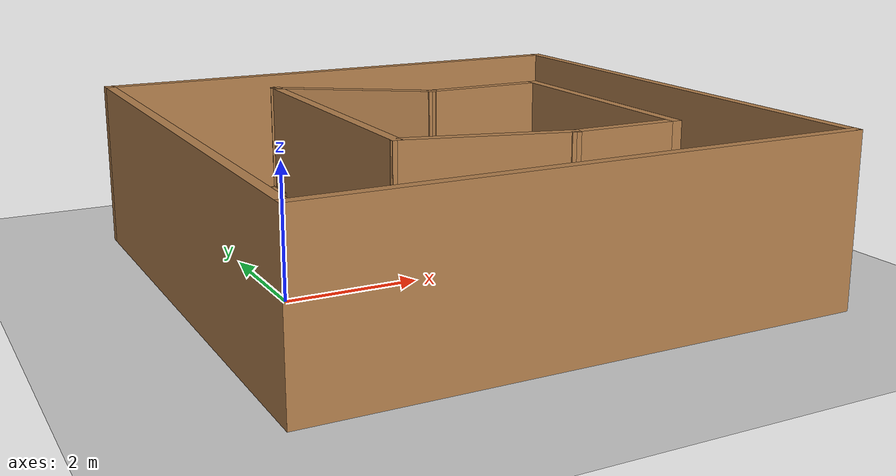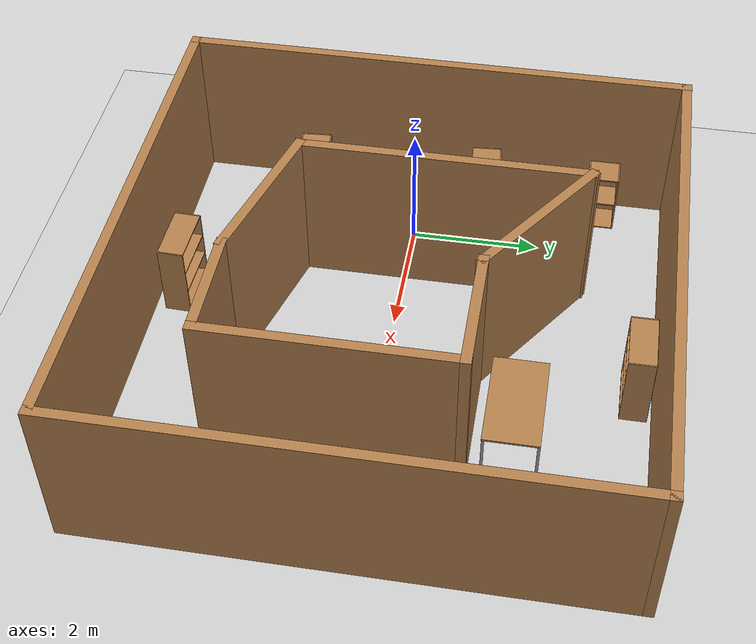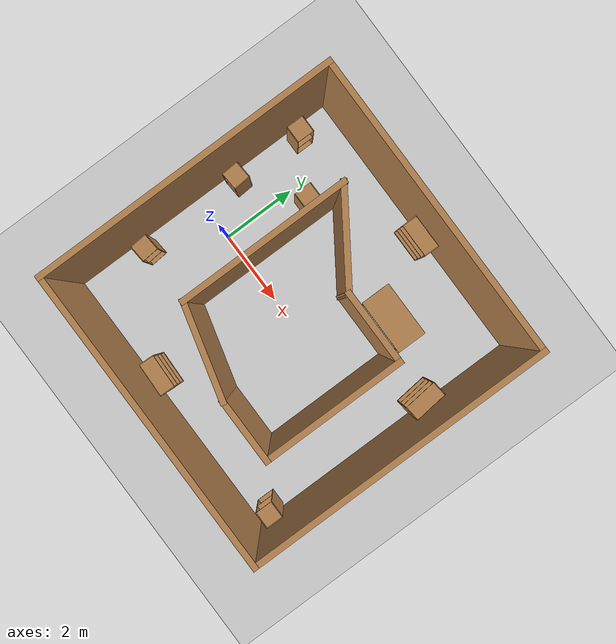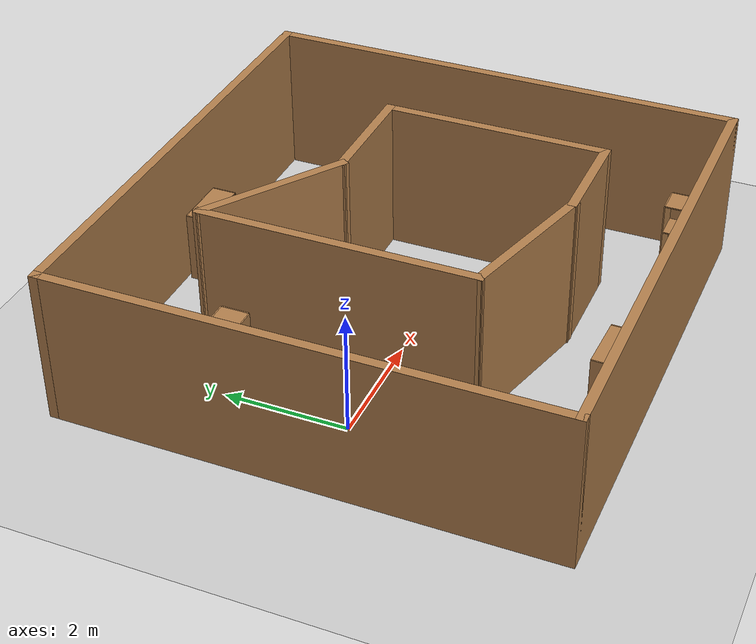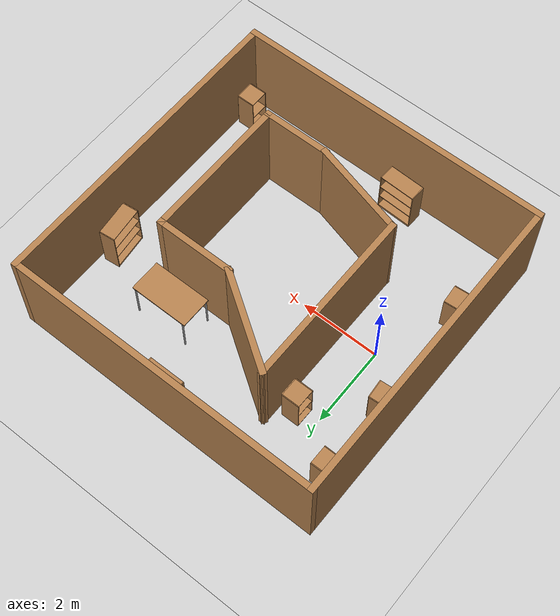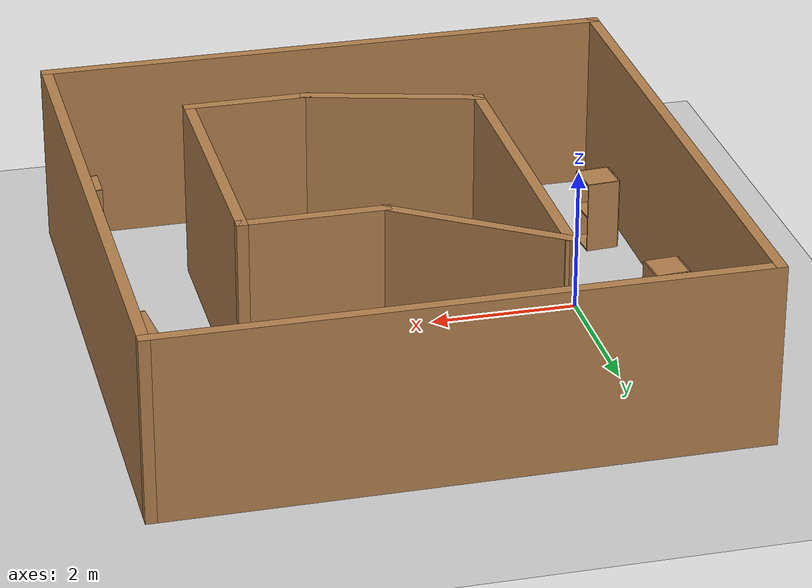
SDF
<sdf version="1.6">
 <world name="default">
  <light name="sun" type="directional">
   <pose>0 0 10 0 -0 0</pose>
   <diffuse>0.8 0.8 0.8 1</diffuse>
   <specular>0.2 0.2 0.2 1</specular>
   <attenuation>
    <range>1000</range>
    <constant>0.9</constant>
    <linear>0.01</linear>
    <quadratic>0.001</quadratic>
   </attenuation>
   <direction>-0.5 0.1 -0.9</direction>
  </light>
  <model name="ground_plane">
   <static>1</static>
   <link name="link">
    <collision name="collision">
     <geometry><plane><normal>0 0 1</normal><size>100 100</size></plane></geometry>
     <surface>
      <contact><collide_bitmask>65535</collide_bitmask></contact>
      <friction><ode><mu>100</mu><mu2>50</mu2></ode></friction>
     </surface>
    </collision>
    <visual name="visual">
     <cast_shadows>0</cast_shadows>
     <geometry><plane><normal>0 0 1</normal><size>100 100</size></plane></geometry>
     <material>
      <script><uri>file://media/materials/scripts/gazebo.material</uri><name>Gazebo/Grey</name></script>
     </material>
    </visual>
   </link>
  </model>
  <gravity>0 0 -9.8</gravity>
  <magnetic_field>6e-06 2.3e-05 -4.2e-05</magnetic_field>
  <atmosphere type="adiabatic"/>
  <physics name="default_physics" default="0" type="ode">
   <max_step_size>0.001</max_step_size>
   <real_time_factor>1</real_time_factor>
   <real_time_update_rate>1000</real_time_update_rate>
  </physics>
  <scene><ambient>0.4 0.4 0.4 1</ambient><background>0.7 0.7 0.7 1</background><shadows>1</shadows></scene>
  <spherical_coordinates>
   <surface_model>EARTH_WGS84</surface_model>
   <latitude_deg>0</latitude_deg>
   <longitude_deg>0</longitude_deg>
   <elevation>0</elevation>
   <heading_deg>0</heading_deg>
  </spherical_coordinates>
  <model name="Danop">
   <pose>2.59198 0.128475 0 0 -0 0</pose>
   <link name="Wall_16">
    <collision name="Wall_16_Collision">
     <geometry><box><size>8 0.15 2.5</size></box></geometry>
     <pose>0 0 1.25 0 -0 0</pose>
    </collision>
    <visual name="Wall_16_Visual">
     <pose>0 0 1.25 0 -0 0</pose>
     <geometry><box><size>8 0.15 2.5</size></box></geometry>
     <material>
      <script><uri>file://media/materials/scripts/gazebo.material</uri><name>Gazebo/Wood</name></script>
      <ambient>1 1 1 1</ambient>
     </material>
     <meta><layer>0</layer></meta>
    </visual>
    <pose>-3.925 0 0 0 0 -1.5708</pose>
   </link>
   <link name="Wall_17">
    <collision name="Wall_17_Collision">
     <geometry><box><size>8 0.15 2.5</size></box></geometry>
     <pose>0 0 1.25 0 -0 0</pose>
    </collision>
    <visual name="Wall_17_Visual">
     <pose>0 0 1.25 0 -0 0</pose>
     <geometry><box><size>8 0.15 2.5</size></box></geometry>
     <material>
      <script><uri>file://media/materials/scripts/gazebo.material</uri><name>Gazebo/Wood</name></script>
      <ambient>1 1 1 1</ambient>
     </material>
     <meta><layer>0</layer></meta>
    </visual>
    <pose>0 -3.925 0 0 -0 0</pose>
   </link>
   <link name="Wall_18">
    <collision name="Wall_18_Collision">
     <geometry><box><size>8 0.15 2.5</size></box></geometry>
     <pose>0 0 1.25 0 -0 0</pose>
    </collision>
    <visual name="Wall_18_Visual">
     <pose>0 0 1.25 0 -0 0</pose>
     <geometry><box><size>8 0.15 2.5</size></box></geometry>
     <material>
      <script><uri>file://media/materials/scripts/gazebo.material</uri><name>Gazebo/Wood</name></script>
      <ambient>1 1 1 1</ambient>
     </material>
     <meta><layer>0</layer></meta>
    </visual>
    <pose>3.925 0 0 0 -0 1.5708</pose>
   </link>
   <link name="Wall_19">
    <collision name="Wall_19_Collision">
     <geometry><box><size>8 0.15 2.5</size></box></geometry>
     <pose>0 0 1.25 0 -0 0</pose>
    </collision>
    <visual name="Wall_19_Visual">
     <pose>0 0 1.25 0 -0 0</pose>
     <geometry><box><size>8 0.15 2.5</size></box></geometry>
     <material>
      <script><uri>file://media/materials/scripts/gazebo.material</uri><name>Gazebo/Wood</name></script>
      <ambient>1 1 1 1</ambient>
     </material>
     <meta><layer>0</layer></meta>
    </visual>
    <pose>0 3.925 0 0 -0 3.14159</pose>
   </link>
   <link name="Wall_22">
    <collision name="Wall_22_Collision">
     <geometry><box><size>4.5 0.15 2.5</size></box></geometry>
     <pose>0 0 1.25 0 -0 0</pose>
    </collision>
    <visual name="Wall_22_Visual">
     <pose>0 0 1.25 0 -0 0</pose>
     <geometry><box><size>4.5 0.15 2.5</size></box></geometry>
     <material>
      <script><uri>file://media/materials/scripts/gazebo.material</uri><name>Gazebo/Wood</name></script>
      <ambient>1 1 1 1</ambient>
     </material>
     <meta><layer>0</layer></meta>
    </visual>
    <pose>-1.64128 0.445644 0 0 0 -1.5708</pose>
   </link>
   <link name="Wall_23">
    <collision name="Wall_23_Collision">
     <geometry><box><size>2.5 0.15 2.5</size></box></geometry>
     <pose>0 0 1.25 0 -0 0</pose>
    </collision>
    <visual name="Wall_23_Visual">
     <pose>0 0 1.25 0 -0 0</pose>
     <geometry><box><size>2.5 0.15 2.5</size></box></geometry>
     <material>
      <script><uri>file://media/materials/scripts/gazebo.material</uri><name>Gazebo/Wood</name></script>
      <ambient>1 1 1 1</ambient>
     </material>
     <meta><layer>0</layer></meta>
    </visual>
    <pose>-0.506321 -2.03347 0 0 0 -0.261799</pose>
   </link>
   <link name="Wall_24">
    <collision name="Wall_24_Collision">
     <geometry><box><size>1.75 0.15 2.5</size></box></geometry>
     <pose>0 0 1.25 0 -0 0</pose>
    </collision>
    <visual name="Wall_24_Visual">
     <pose>0 0 1.25 0 -0 0</pose>
     <geometry><box><size>1.75 0.15 2.5</size></box></geometry>
     <material>
      <script><uri>file://media/materials/scripts/gazebo.material</uri><name>Gazebo/Wood</name></script>
      <ambient>1 1 1 1</ambient>
     </material>
     <meta><layer>0</layer></meta>
    </visual>
    <pose>1.42864 -2.33758 0 0 -0 0</pose>
   </link>
   <link name="Wall_25">
    <collision name="Wall_25_Collision">
     <geometry><box><size>3.75 0.15 2.5</size></box></geometry>
     <pose>0 0 1.25 0 -0 0</pose>
    </collision>
    <visual name="Wall_25_Visual">
     <pose>0 0 1.25 0 -0 0</pose>
     <geometry><box><size>3.75 0.15 2.5</size></box></geometry>
     <material>
      <script><uri>file://media/materials/scripts/gazebo.material</uri><name>Gazebo/Wood</name></script>
      <ambient>1 1 1 1</ambient>
     </material>
     <meta><layer>0</layer></meta>
    </visual>
    <pose>2.22864 -0.537581 0 0 -0 1.5708</pose>
   </link>
   <link name="Wall_26">
    <collision name="Wall_26_Collision">
     <geometry><box><size>2 0.15 2.5</size></box></geometry>
     <pose>0 0 1.25 0 -0 0</pose>
    </collision>
    <visual name="Wall_26_Visual">
     <pose>0 0 1.25 0 -0 0</pose>
     <geometry><box><size>2 0.15 2.5</size></box></geometry>
     <material>
      <script><uri>file://media/materials/scripts/gazebo.material</uri><name>Gazebo/Wood</name></script>
      <ambient>1 1 1 1</ambient>
     </material>
     <meta><layer>0</layer></meta>
    </visual>
    <pose>1.30364 1.26242 0 0 -0 3.14159</pose>
   </link>
   <link name="Wall_27">
    <collision name="Wall_27_Collision">
     <geometry><box><size>2.58411 0.15 2.5</size></box></geometry>
     <pose>0 0 1.25 0 -0 0</pose>
    </collision>
    <visual name="Wall_27_Visual">
     <pose>0 0 1.25 0 -0 0</pose>
     <geometry><box><size>2.58411 0.15 2.5</size></box></geometry>
     <material>
      <script><uri>file://media/materials/scripts/gazebo.material</uri><name>Gazebo/Wood</name></script>
      <ambient>1 1 1 1</ambient>
     </material>
     <meta><layer>0</layer></meta>
    </visual>
    <pose>-0.631321 1.94153 0 0 -0 2.54962</pose>
   </link>
   <static>1</static>
  </model>
  <model name="cabinet">
   <static>1</static>
   <link name="cabinet_bottom_plate">
    <inertial>
     <pose>0 0 -1 0 -0 0</pose>
     <inertia><ixx>2.05</ixx><ixy>0</ixy><ixz>0</ixz><iyy>2.05</iyy><iyz>0</iyz><izz>2.05</izz></inertia>
     <mass>25</mass>
    </inertial>
    <collision name="cabinet_bottom_plate_geom">
     <pose>0 0 0.01 0 -0 0</pose>
     <geometry><box><size>0.45 0.45 0.02</size></box></geometry>
    </collision>
    <visual name="cabinet_bottom_plate_geom_visual">
     <pose>0 0 0.01 0 -0 0</pose>
     <geometry><box><size>0.45 0.45 0.02</size></box></geometry>
     <material>
      <script><uri>file://media/materials/scripts/gazebo.material</uri><name>Gazebo/Wood</name></script>
     </material>
    </visual>
    <collision name="cabinet_bottom_plate_geom_cabinet_back_plate">
     <pose>0.235 0 0.51 0 -0 0</pose>
     <geometry><box><size>0.02 0.45 1.02</size></box></geometry>
    </collision>
    <visual name="cabinet_bottom_plate_geom_cabinet_back_plate_visual">
     <pose>0.235 0 0.51 0 -0 0</pose>
     <geometry><box><size>0.02 0.45 1.02</size></box></geometry>
     <material>
      <script><uri>file://media/materials/scripts/gazebo.material</uri><name>Gazebo/Wood</name></script>
     </material>
    </visual>
    <collision name="cabinet_bottom_plate_geom_cabinet_left_plate">
     <pose>0 0.235 0.51 0 -0 0</pose>
     <geometry><box><size>0.45 0.02 1.02</size></box></geometry>
    </collision>
    <visual name="cabinet_bottom_plate_geom_cabinet_left_plate_visual">
     <pose>0 0.235 0.51 0 -0 0</pose>
     <geometry><box><size>0.45 0.02 1.02</size></box></geometry>
     <material>
      <script><uri>file://media/materials/scripts/gazebo.material</uri><name>Gazebo/Wood</name></script>
     </material>
    </visual>
    <collision name="cabinet_bottom_plate_geom_cabinet_middle_plate">
     <pose>0 0 0.51 0 -0 0</pose>
     <geometry><box><size>0.45 0.45 0.02</size></box></geometry>
    </collision>
    <visual name="cabinet_bottom_plate_geom_cabinet_middle_plate_visual">
     <pose>0 0 0.51 0 -0 0</pose>
     <geometry><box><size>0.45 0.45 0.02</size></box></geometry>
     <material>
      <script><uri>file://media/materials/scripts/gazebo.material</uri><name>Gazebo/Wood</name></script>
     </material>
    </visual>
    <collision name="cabinet_bottom_plate_geom_cabinet_right_plate">
     <pose>0 -0.235 0.51 0 -0 0</pose>
     <geometry><box><size>0.45 0.02 1.02</size></box></geometry>
    </collision>
    <visual name="cabinet_bottom_plate_geom_cabinet_right_plate_visual">
     <pose>0 -0.235 0.51 0 -0 0</pose>
     <geometry><box><size>0.45 0.02 1.02</size></box></geometry>
     <material>
      <script><uri>file://media/materials/scripts/gazebo.material</uri><name>Gazebo/Wood</name></script>
     </material>
    </visual>
    <collision name="cabinet_bottom_plate_geom_cabinet_top_plate">
     <pose>0 0 1.01 0 -0 0</pose>
     <geometry><box><size>0.45 0.45 0.02</size></box></geometry>
    </collision>
    <visual name="cabinet_bottom_plate_geom_cabinet_top_plate_visual">
     <pose>0 0 1.01 0 -0 0</pose>
     <geometry><box><size>0.45 0.45 0.02</size></box></geometry>
     <material>
      <script><uri>file://media/materials/scripts/gazebo.material</uri><name>Gazebo/Wood</name></script>
     </material>
    </visual>
   </link>
   <pose>-0.832698 -1.78649 0 0 0 -3.06503</pose>
  </model>
  <model name="bookshelf">
   <static>1</static>
   <link name="link">
    <inertial><mass>1</mass></inertial>
    <collision name="back">
     <pose>0 0.005 0.6 0 -0 0</pose>
     <geometry><box><size>0.9 0.01 1.2</size></box></geometry>
    </collision>
    <visual name="visual1">
     <pose>0 0.005 0.6 0 -0 0</pose>
     <geometry><box><size>0.9 0.01 1.2</size></box></geometry>
     <material>
      <script><uri>file://media/materials/scripts/gazebo.material</uri><name>Gazebo/Wood</name></script>
     </material>
    </visual>
    <collision name="left_side">
     <pose>0.45 -0.195 0.6 0 -0 0</pose>
     <geometry><box><size>0.02 0.4 1.2</size></box></geometry>
    </collision>
    <visual name="visual2">
     <pose>0.45 -0.195 0.6 0 -0 0</pose>
     <geometry><box><size>0.02 0.4 1.2</size></box></geometry>
     <material>
      <script><uri>file://media/materials/scripts/gazebo.material</uri><name>Gazebo/Wood</name></script>
     </material>
    </visual>
    <collision name="right_side">
     <pose>-0.45 -0.195 0.6 0 -0 0</pose>
     <geometry><box><size>0.02 0.4 1.2</size></box></geometry>
    </collision>
    <visual name="visual3">
     <pose>-0.45 -0.195 0.6 0 -0 0</pose>
     <geometry><box><size>0.02 0.4 1.2</size></box></geometry>
     <material>
      <script><uri>file://media/materials/scripts/gazebo.material</uri><name>Gazebo/Wood</name></script>
     </material>
    </visual>
    <collision name="bottom">
     <pose>0 -0.195 0.03 0 -0 0</pose>
     <geometry><box><size>0.88 0.4 0.06</size></box></geometry>
    </collision>
    <visual name="visual4">
     <pose>0 -0.195 0.03 0 -0 0</pose>
     <geometry><box><size>0.88 0.4 0.06</size></box></geometry>
     <material>
      <script><uri>file://media/materials/scripts/gazebo.material</uri><name>Gazebo/Wood</name></script>
     </material>
    </visual>
    <collision name="top">
     <pose>0 -0.195 1.19 0 -0 0</pose>
     <geometry><box><size>0.88 0.4 0.02</size></box></geometry>
    </collision>
    <visual name="visual5">
     <pose>0 -0.195 1.19 0 -0 0</pose>
     <geometry><box><size>0.88 0.4 0.02</size></box></geometry>
     <material>
      <script><uri>file://media/materials/scripts/gazebo.material</uri><name>Gazebo/Wood</name></script>
     </material>
    </visual>
    <collision name="low_shelf">
     <pose>0 -0.195 0.43 0 -0 0</pose>
     <geometry><box><size>0.88 0.4 0.02</size></box></geometry>
    </collision>
    <visual name="visual6">
     <pose>0 -0.195 0.43 0 -0 0</pose>
     <geometry><box><size>0.88 0.4 0.02</size></box></geometry>
     <material>
      <script><uri>file://media/materials/scripts/gazebo.material</uri><name>Gazebo/Wood</name></script>
     </material>
    </visual>
    <collision name="high_shelf">
     <pose>0 -0.195 0.8 0 -0 0</pose>
     <geometry><box><size>0.88 0.4 0.02</size></box></geometry>
    </collision>
    <visual name="visual7">
     <pose>0 -0.195 0.8 0 -0 0</pose>
     <geometry><box><size>0.88 0.4 0.02</size></box></geometry>
     <material>
      <script><uri>file://media/materials/scripts/gazebo.material</uri><name>Gazebo/Wood</name></script>
     </material>
    </visual>
   </link>
   <pose>1.83384 -3.53804 0 0 -0 3.1072</pose>
  </model>
  <model name="table">
   <static>1</static>
   <link name="link">
    <collision name="surface">
     <pose>0 0 1 0 -0 0</pose>
     <geometry><box><size>1.5 0.8 0.03</size></box></geometry>
     <surface><friction><ode><mu>0.6</mu><mu2>0.6</mu2></ode></friction></surface>
    </collision>
    <visual name="visual1">
     <pose>0 0 1 0 -0 0</pose>
     <geometry><box><size>1.5 0.8 0.03</size></box></geometry>
     <material>
      <script><uri>file://media/materials/scripts/gazebo.material</uri><name>Gazebo/Wood</name></script>
     </material>
    </visual>
    <collision name="front_left_leg">
     <pose>0.68 0.38 0.5 0 -0 0</pose>
     <geometry><cylinder><radius>0.02</radius><length>1</length></cylinder></geometry>
    </collision>
    <visual name="front_left_leg">
     <pose>0.68 0.38 0.5 0 -0 0</pose>
     <geometry><cylinder><radius>0.02</radius><length>1</length></cylinder></geometry>
     <material>
      <script><uri>file://media/materials/scripts/gazebo.material</uri><name>Gazebo/Grey</name></script>
     </material>
    </visual>
    <collision name="front_right_leg">
     <pose>0.68 -0.38 0.5 0 -0 0</pose>
     <geometry><cylinder><radius>0.02</radius><length>1</length></cylinder></geometry>
    </collision>
    <visual name="front_right_leg">
     <pose>0.68 -0.38 0.5 0 -0 0</pose>
     <geometry><cylinder><radius>0.02</radius><length>1</length></cylinder></geometry>
     <material>
      <script><uri>file://media/materials/scripts/gazebo.material</uri><name>Gazebo/Grey</name></script>
     </material>
    </visual>
    <collision name="back_right_leg">
     <pose>-0.68 -0.38 0.5 0 -0 0</pose>
     <geometry><cylinder><radius>0.02</radius><length>1</length></cylinder></geometry>
    </collision>
    <visual name="back_right_leg">
     <pose>-0.68 -0.38 0.5 0 -0 0</pose>
     <geometry><cylinder><radius>0.02</radius><length>1</length></cylinder></geometry>
     <material>
      <script><uri>file://media/materials/scripts/gazebo.material</uri><name>Gazebo/Grey</name></script>
     </material>
    </visual>
    <collision name="back_left_leg">
     <pose>-0.68 0.38 0.5 0 -0 0</pose>
     <geometry><cylinder><radius>0.02</radius><length>1</length></cylinder></geometry>
    </collision>
    <visual name="back_left_leg">
     <pose>-0.68 0.38 0.5 0 -0 0</pose>
     <geometry><cylinder><radius>0.02</radius><length>1</length></cylinder></geometry>
     <material>
      <script><uri>file://media/materials/scripts/gazebo.material</uri><name>Gazebo/Grey</name></script>
     </material>
    </visual>
   </link>
   <pose>4.13535 2.04973 0 0 -0 0</pose>
  </model>
  <model name="cabinet_0">
   <static>1</static>
   <link name="cabinet_bottom_plate">
    <inertial>
     <pose>0 0 -1 0 -0 0</pose>
     <inertia><ixx>2.05</ixx><ixy>0</ixy><ixz>0</ixz><iyy>2.05</iyy><iyz>0</iyz><izz>2.05</izz></inertia>
     <mass>25</mass>
    </inertial>
    <collision name="cabinet_bottom_plate_geom">
     <pose>0 0 0.01 0 -0 0</pose>
     <geometry><box><size>0.45 0.45 0.02</size></box></geometry>
    </collision>
    <visual name="cabinet_bottom_plate_geom_visual">
     <pose>0 0 0.01 0 -0 0</pose>
     <geometry><box><size>0.45 0.45 0.02</size></box></geometry>
     <material>
      <script><uri>file://media/materials/scripts/gazebo.material</uri><name>Gazebo/Wood</name></script>
     </material>
    </visual>
    <collision name="cabinet_bottom_plate_geom_cabinet_back_plate">
     <pose>0.235 0 0.51 0 -0 0</pose>
     <geometry><box><size>0.02 0.45 1.02</size></box></geometry>
    </collision>
    <visual name="cabinet_bottom_plate_geom_cabinet_back_plate_visual">
     <pose>0.235 0 0.51 0 -0 0</pose>
     <geometry><box><size>0.02 0.45 1.02</size></box></geometry>
     <material>
      <script><uri>file://media/materials/scripts/gazebo.material</uri><name>Gazebo/Wood</name></script>
     </material>
    </visual>
    <collision name="cabinet_bottom_plate_geom_cabinet_left_plate">
     <pose>0 0.235 0.51 0 -0 0</pose>
     <geometry><box><size>0.45 0.02 1.02</size></box></geometry>
    </collision>
    <visual name="cabinet_bottom_plate_geom_cabinet_left_plate_visual">
     <pose>0 0.235 0.51 0 -0 0</pose>
     <geometry><box><size>0.45 0.02 1.02</size></box></geometry>
     <material>
      <script><uri>file://media/materials/scripts/gazebo.material</uri><name>Gazebo/Wood</name></script>
     </material>
    </visual>
    <collision name="cabinet_bottom_plate_geom_cabinet_middle_plate">
     <pose>0 0 0.51 0 -0 0</pose>
     <geometry><box><size>0.45 0.45 0.02</size></box></geometry>
    </collision>
    <visual name="cabinet_bottom_plate_geom_cabinet_middle_plate_visual">
     <pose>0 0 0.51 0 -0 0</pose>
     <geometry><box><size>0.45 0.45 0.02</size></box></geometry>
     <material>
      <script><uri>file://media/materials/scripts/gazebo.material</uri><name>Gazebo/Wood</name></script>
     </material>
    </visual>
    <collision name="cabinet_bottom_plate_geom_cabinet_right_plate">
     <pose>0 -0.235 0.51 0 -0 0</pose>
     <geometry><box><size>0.45 0.02 1.02</size></box></geometry>
    </collision>
    <visual name="cabinet_bottom_plate_geom_cabinet_right_plate_visual">
     <pose>0 -0.235 0.51 0 -0 0</pose>
     <geometry><box><size>0.45 0.02 1.02</size></box></geometry>
     <material>
      <script><uri>file://media/materials/scripts/gazebo.material</uri><name>Gazebo/Wood</name></script>
     </material>
    </visual>
    <collision name="cabinet_bottom_plate_geom_cabinet_top_plate">
     <pose>0 0 1.01 0 -0 0</pose>
     <geometry><box><size>0.45 0.45 0.02</size></box></geometry>
    </collision>
    <visual name="cabinet_bottom_plate_geom_cabinet_top_plate_visual">
     <pose>0 0 1.01 0 -0 0</pose>
     <geometry><box><size>0.45 0.45 0.02</size></box></geometry>
     <material>
      <script><uri>file://media/materials/scripts/gazebo.material</uri><name>Gazebo/Wood</name></script>
     </material>
    </visual>
   </link>
   <pose>-0.887547 2.96489 0 0 0 -3.14068</pose>
  </model>
  <model name="cabinet_1">
   <static>1</static>
   <link name="cabinet_bottom_plate">
    <inertial>
     <pose>0 0 -1 0 -0 0</pose>
     <inertia><ixx>2.05</ixx><ixy>0</ixy><ixz>0</ixz><iyy>2.05</iyy><iyz>0</iyz><izz>2.05</izz></inertia>
     <mass>25</mass>
    </inertial>
    <collision name="cabinet_bottom_plate_geom">
     <pose>0 0 0.01 0 -0 0</pose>
     <geometry><box><size>0.45 0.45 0.02</size></box></geometry>
    </collision>
    <visual name="cabinet_bottom_plate_geom_visual">
     <pose>0 0 0.01 0 -0 0</pose>
     <geometry><box><size>0.45 0.45 0.02</size></box></geometry>
     <material>
      <script><uri>file://media/materials/scripts/gazebo.material</uri><name>Gazebo/Wood</name></script>
     </material>
    </visual>
    <collision name="cabinet_bottom_plate_geom_cabinet_back_plate">
     <pose>0.235 0 0.51 0 -0 0</pose>
     <geometry><box><size>0.02 0.45 1.02</size></box></geometry>
    </collision>
    <visual name="cabinet_bottom_plate_geom_cabinet_back_plate_visual">
     <pose>0.235 0 0.51 0 -0 0</pose>
     <geometry><box><size>0.02 0.45 1.02</size></box></geometry>
     <material>
      <script><uri>file://media/materials/scripts/gazebo.material</uri><name>Gazebo/Wood</name></script>
     </material>
    </visual>
    <collision name="cabinet_bottom_plate_geom_cabinet_left_plate">
     <pose>0 0.235 0.51 0 -0 0</pose>
     <geometry><box><size>0.45 0.02 1.02</size></box></geometry>
    </collision>
    <visual name="cabinet_bottom_plate_geom_cabinet_left_plate_visual">
     <pose>0 0.235 0.51 0 -0 0</pose>
     <geometry><box><size>0.45 0.02 1.02</size></box></geometry>
     <material>
      <script><uri>file://media/materials/scripts/gazebo.material</uri><name>Gazebo/Wood</name></script>
     </material>
    </visual>
    <collision name="cabinet_bottom_plate_geom_cabinet_middle_plate">
     <pose>0 0 0.51 0 -0 0</pose>
     <geometry><box><size>0.45 0.45 0.02</size></box></geometry>
    </collision>
    <visual name="cabinet_bottom_plate_geom_cabinet_middle_plate_visual">
     <pose>0 0 0.51 0 -0 0</pose>
     <geometry><box><size>0.45 0.45 0.02</size></box></geometry>
     <material>
      <script><uri>file://media/materials/scripts/gazebo.material</uri><name>Gazebo/Wood</name></script>
     </material>
    </visual>
    <collision name="cabinet_bottom_plate_geom_cabinet_right_plate">
     <pose>0 -0.235 0.51 0 -0 0</pose>
     <geometry><box><size>0.45 0.02 1.02</size></box></geometry>
    </collision>
    <visual name="cabinet_bottom_plate_geom_cabinet_right_plate_visual">
     <pose>0 -0.235 0.51 0 -0 0</pose>
     <geometry><box><size>0.45 0.02 1.02</size></box></geometry>
     <material>
      <script><uri>file://media/materials/scripts/gazebo.material</uri><name>Gazebo/Wood</name></script>
     </material>
    </visual>
    <collision name="cabinet_bottom_plate_geom_cabinet_top_plate">
     <pose>0 0 1.01 0 -0 0</pose>
     <geometry><box><size>0.45 0.45 0.02</size></box></geometry>
    </collision>
    <visual name="cabinet_bottom_plate_geom_cabinet_top_plate_visual">
     <pose>0 0 1.01 0 -0 0</pose>
     <geometry><box><size>0.45 0.45 0.02</size></box></geometry>
     <material>
      <script><uri>file://media/materials/scripts/gazebo.material</uri><name>Gazebo/Wood</name></script>
     </material>
    </visual>
   </link>
   <pose>0.512595 2.15453 0 0 -0 0</pose>
  </model>
  <model name="cabinet_2">
   <static>1</static>
   <link name="cabinet_bottom_plate">
    <inertial>
     <pose>0 0 -1 0 -0 0</pose>
     <inertia><ixx>2.05</ixx><ixy>0</ixy><ixz>0</ixz><iyy>2.05</iyy><iyz>0</iyz><izz>2.05</izz></inertia>
     <mass>25</mass>
    </inertial>
    <collision name="cabinet_bottom_plate_geom">
     <pose>0 0 0.01 0 -0 0</pose>
     <geometry><box><size>0.45 0.45 0.02</size></box></geometry>
    </collision>
    <visual name="cabinet_bottom_plate_geom_visual">
     <pose>0 0 0.01 0 -0 0</pose>
     <geometry><box><size>0.45 0.45 0.02</size></box></geometry>
     <material>
      <script><uri>file://media/materials/scripts/gazebo.material</uri><name>Gazebo/Wood</name></script>
     </material>
    </visual>
    <collision name="cabinet_bottom_plate_geom_cabinet_back_plate">
     <pose>0.235 0 0.51 0 -0 0</pose>
     <geometry><box><size>0.02 0.45 1.02</size></box></geometry>
    </collision>
    <visual name="cabinet_bottom_plate_geom_cabinet_back_plate_visual">
     <pose>0.235 0 0.51 0 -0 0</pose>
     <geometry><box><size>0.02 0.45 1.02</size></box></geometry>
     <material>
      <script><uri>file://media/materials/scripts/gazebo.material</uri><name>Gazebo/Wood</name></script>
     </material>
    </visual>
    <collision name="cabinet_bottom_plate_geom_cabinet_left_plate">
     <pose>0 0.235 0.51 0 -0 0</pose>
     <geometry><box><size>0.45 0.02 1.02</size></box></geometry>
    </collision>
    <visual name="cabinet_bottom_plate_geom_cabinet_left_plate_visual">
     <pose>0 0.235 0.51 0 -0 0</pose>
     <geometry><box><size>0.45 0.02 1.02</size></box></geometry>
     <material>
      <script><uri>file://media/materials/scripts/gazebo.material</uri><name>Gazebo/Wood</name></script>
     </material>
    </visual>
    <collision name="cabinet_bottom_plate_geom_cabinet_middle_plate">
     <pose>0 0 0.51 0 -0 0</pose>
     <geometry><box><size>0.45 0.45 0.02</size></box></geometry>
    </collision>
    <visual name="cabinet_bottom_plate_geom_cabinet_middle_plate_visual">
     <pose>0 0 0.51 0 -0 0</pose>
     <geometry><box><size>0.45 0.45 0.02</size></box></geometry>
     <material>
      <script><uri>file://media/materials/scripts/gazebo.material</uri><name>Gazebo/Wood</name></script>
     </material>
    </visual>
    <collision name="cabinet_bottom_plate_geom_cabinet_right_plate">
     <pose>0 -0.235 0.51 0 -0 0</pose>
     <geometry><box><size>0.45 0.02 1.02</size></box></geometry>
    </collision>
    <visual name="cabinet_bottom_plate_geom_cabinet_right_plate_visual">
     <pose>0 -0.235 0.51 0 -0 0</pose>
     <geometry><box><size>0.45 0.02 1.02</size></box></geometry>
     <material>
      <script><uri>file://media/materials/scripts/gazebo.material</uri><name>Gazebo/Wood</name></script>
     </material>
    </visual>
    <collision name="cabinet_bottom_plate_geom_cabinet_top_plate">
     <pose>0 0 1.01 0 -0 0</pose>
     <geometry><box><size>0.45 0.45 0.02</size></box></geometry>
    </collision>
    <visual name="cabinet_bottom_plate_geom_cabinet_top_plate_visual">
     <pose>0 0 1.01 0 -0 0</pose>
     <geometry><box><size>0.45 0.45 0.02</size></box></geometry>
     <material>
      <script><uri>file://media/materials/scripts/gazebo.material</uri><name>Gazebo/Wood</name></script>
     </material>
    </visual>
   </link>
   <pose>-0.92309 1.03898 0 0 -0 1.64245</pose>
  </model>
  <model name="cabinet_3">
   <static>1</static>
   <link name="cabinet_bottom_plate">
    <inertial>
     <pose>0 0 -1 0 -0 0</pose>
     <inertia><ixx>2.05</ixx><ixy>0</ixy><ixz>0</ixz><iyy>2.05</iyy><iyz>0</iyz><izz>2.05</izz></inertia>
     <mass>25</mass>
    </inertial>
    <collision name="cabinet_bottom_plate_geom">
     <pose>0 0 0.01 0 -0 0</pose>
     <geometry><box><size>0.45 0.45 0.02</size></box></geometry>
    </collision>
    <visual name="cabinet_bottom_plate_geom_visual">
     <pose>0 0 0.01 0 -0 0</pose>
     <geometry><box><size>0.45 0.45 0.02</size></box></geometry>
     <material>
      <script><uri>file://media/materials/scripts/gazebo.material</uri><name>Gazebo/Wood</name></script>
     </material>
    </visual>
    <collision name="cabinet_bottom_plate_geom_cabinet_back_plate">
     <pose>0.235 0 0.51 0 -0 0</pose>
     <geometry><box><size>0.02 0.45 1.02</size></box></geometry>
    </collision>
    <visual name="cabinet_bottom_plate_geom_cabinet_back_plate_visual">
     <pose>0.235 0 0.51 0 -0 0</pose>
     <geometry><box><size>0.02 0.45 1.02</size></box></geometry>
     <material>
      <script><uri>file://media/materials/scripts/gazebo.material</uri><name>Gazebo/Wood</name></script>
     </material>
    </visual>
    <collision name="cabinet_bottom_plate_geom_cabinet_left_plate">
     <pose>0 0.235 0.51 0 -0 0</pose>
     <geometry><box><size>0.45 0.02 1.02</size></box></geometry>
    </collision>
    <visual name="cabinet_bottom_plate_geom_cabinet_left_plate_visual">
     <pose>0 0.235 0.51 0 -0 0</pose>
     <geometry><box><size>0.45 0.02 1.02</size></box></geometry>
     <material>
      <script><uri>file://media/materials/scripts/gazebo.material</uri><name>Gazebo/Wood</name></script>
     </material>
    </visual>
    <collision name="cabinet_bottom_plate_geom_cabinet_middle_plate">
     <pose>0 0 0.51 0 -0 0</pose>
     <geometry><box><size>0.45 0.45 0.02</size></box></geometry>
    </collision>
    <visual name="cabinet_bottom_plate_geom_cabinet_middle_plate_visual">
     <pose>0 0 0.51 0 -0 0</pose>
     <geometry><box><size>0.45 0.45 0.02</size></box></geometry>
     <material>
      <script><uri>file://media/materials/scripts/gazebo.material</uri><name>Gazebo/Wood</name></script>
     </material>
    </visual>
    <collision name="cabinet_bottom_plate_geom_cabinet_right_plate">
     <pose>0 -0.235 0.51 0 -0 0</pose>
     <geometry><box><size>0.45 0.02 1.02</size></box></geometry>
    </collision>
    <visual name="cabinet_bottom_plate_geom_cabinet_right_plate_visual">
     <pose>0 -0.235 0.51 0 -0 0</pose>
     <geometry><box><size>0.45 0.02 1.02</size></box></geometry>
     <material>
      <script><uri>file://media/materials/scripts/gazebo.material</uri><name>Gazebo/Wood</name></script>
     </material>
    </visual>
    <collision name="cabinet_bottom_plate_geom_cabinet_top_plate">
     <pose>0 0 1.01 0 -0 0</pose>
     <geometry><box><size>0.45 0.45 0.02</size></box></geometry>
    </collision>
    <visual name="cabinet_bottom_plate_geom_cabinet_top_plate_visual">
     <pose>0 0 1.01 0 -0 0</pose>
     <geometry><box><size>0.45 0.45 0.02</size></box></geometry>
     <material>
      <script><uri>file://media/materials/scripts/gazebo.material</uri><name>Gazebo/Wood</name></script>
     </material>
    </visual>
   </link>
   <pose>6.15691 -3.21247 0 0 -0 0</pose>
  </model>
  <model name="bookshelf_0">
   <static>1</static>
   <link name="link">
    <inertial><mass>1</mass></inertial>
    <collision name="back">
     <pose>0 0.005 0.6 0 -0 0</pose>
     <geometry><box><size>0.9 0.01 1.2</size></box></geometry>
    </collision>
    <visual name="visual1">
     <pose>0 0.005 0.6 0 -0 0</pose>
     <geometry><box><size>0.9 0.01 1.2</size></box></geometry>
     <material>
      <script><uri>file://media/materials/scripts/gazebo.material</uri><name>Gazebo/Wood</name></script>
     </material>
    </visual>
    <collision name="left_side">
     <pose>0.45 -0.195 0.6 0 -0 0</pose>
     <geometry><box><size>0.02 0.4 1.2</size></box></geometry>
    </collision>
    <visual name="visual2">
     <pose>0.45 -0.195 0.6 0 -0 0</pose>
     <geometry><box><size>0.02 0.4 1.2</size></box></geometry>
     <material>
      <script><uri>file://media/materials/scripts/gazebo.material</uri><name>Gazebo/Wood</name></script>
     </material>
    </visual>
    <collision name="right_side">
     <pose>-0.45 -0.195 0.6 0 -0 0</pose>
     <geometry><box><size>0.02 0.4 1.2</size></box></geometry>
    </collision>
    <visual name="visual3">
     <pose>-0.45 -0.195 0.6 0 -0 0</pose>
     <geometry><box><size>0.02 0.4 1.2</size></box></geometry>
     <material>
      <script><uri>file://media/materials/scripts/gazebo.material</uri><name>Gazebo/Wood</name></script>
     </material>
    </visual>
    <collision name="bottom">
     <pose>0 -0.195 0.03 0 -0 0</pose>
     <geometry><box><size>0.88 0.4 0.06</size></box></geometry>
    </collision>
    <visual name="visual4">
     <pose>0 -0.195 0.03 0 -0 0</pose>
     <geometry><box><size>0.88 0.4 0.06</size></box></geometry>
     <material>
      <script><uri>file://media/materials/scripts/gazebo.material</uri><name>Gazebo/Wood</name></script>
     </material>
    </visual>
    <collision name="top">
     <pose>0 -0.195 1.19 0 -0 0</pose>
     <geometry><box><size>0.88 0.4 0.02</size></box></geometry>
    </collision>
    <visual name="visual5">
     <pose>0 -0.195 1.19 0 -0 0</pose>
     <geometry><box><size>0.88 0.4 0.02</size></box></geometry>
     <material>
      <script><uri>file://media/materials/scripts/gazebo.material</uri><name>Gazebo/Wood</name></script>
     </material>
    </visual>
    <collision name="low_shelf">
     <pose>0 -0.195 0.43 0 -0 0</pose>
     <geometry><box><size>0.88 0.4 0.02</size></box></geometry>
    </collision>
    <visual name="visual6">
     <pose>0 -0.195 0.43 0 -0 0</pose>
     <geometry><box><size>0.88 0.4 0.02</size></box></geometry>
     <material>
      <script><uri>file://media/materials/scripts/gazebo.material</uri><name>Gazebo/Wood</name></script>
     </material>
    </visual>
    <collision name="high_shelf">
     <pose>0 -0.195 0.8 0 -0 0</pose>
     <geometry><box><size>0.88 0.4 0.02</size></box></geometry>
    </collision>
    <visual name="visual7">
     <pose>0 -0.195 0.8 0 -0 0</pose>
     <geometry><box><size>0.88 0.4 0.02</size></box></geometry>
     <material>
      <script><uri>file://media/materials/scripts/gazebo.material</uri><name>Gazebo/Wood</name></script>
     </material>
    </visual>
   </link>
   <pose>2.92179 3.90965 0 0 -0 0</pose>
  </model>
  <model name="bookshelf_1">
   <static>1</static>
   <link name="link">
    <inertial><mass>1</mass></inertial>
    <collision name="back">
     <pose>0 0.005 0.6 0 -0 0</pose>
     <geometry><box><size>0.9 0.01 1.2</size></box></geometry>
    </collision>
    <visual name="visual1">
     <pose>0 0.005 0.6 0 -0 0</pose>
     <geometry><box><size>0.9 0.01 1.2</size></box></geometry>
     <material>
      <script><uri>file://media/materials/scripts/gazebo.material</uri><name>Gazebo/Wood</name></script>
     </material>
    </visual>
    <collision name="left_side">
     <pose>0.45 -0.195 0.6 0 -0 0</pose>
     <geometry><box><size>0.02 0.4 1.2</size></box></geometry>
    </collision>
    <visual name="visual2">
     <pose>0.45 -0.195 0.6 0 -0 0</pose>
     <geometry><box><size>0.02 0.4 1.2</size></box></geometry>
     <material>
      <script><uri>file://media/materials/scripts/gazebo.material</uri><name>Gazebo/Wood</name></script>
     </material>
    </visual>
    <collision name="right_side">
     <pose>-0.45 -0.195 0.6 0 -0 0</pose>
     <geometry><box><size>0.02 0.4 1.2</size></box></geometry>
    </collision>
    <visual name="visual3">
     <pose>-0.45 -0.195 0.6 0 -0 0</pose>
     <geometry><box><size>0.02 0.4 1.2</size></box></geometry>
     <material>
      <script><uri>file://media/materials/scripts/gazebo.material</uri><name>Gazebo/Wood</name></script>
     </material>
    </visual>
    <collision name="bottom">
     <pose>0 -0.195 0.03 0 -0 0</pose>
     <geometry><box><size>0.88 0.4 0.06</size></box></geometry>
    </collision>
    <visual name="visual4">
     <pose>0 -0.195 0.03 0 -0 0</pose>
     <geometry><box><size>0.88 0.4 0.06</size></box></geometry>
     <material>
      <script><uri>file://media/materials/scripts/gazebo.material</uri><name>Gazebo/Wood</name></script>
     </material>
    </visual>
    <collision name="top">
     <pose>0 -0.195 1.19 0 -0 0</pose>
     <geometry><box><size>0.88 0.4 0.02</size></box></geometry>
    </collision>
    <visual name="visual5">
     <pose>0 -0.195 1.19 0 -0 0</pose>
     <geometry><box><size>0.88 0.4 0.02</size></box></geometry>
     <material>
      <script><uri>file://media/materials/scripts/gazebo.material</uri><name>Gazebo/Wood</name></script>
     </material>
    </visual>
    <collision name="low_shelf">
     <pose>0 -0.195 0.43 0 -0 0</pose>
     <geometry><box><size>0.88 0.4 0.02</size></box></geometry>
    </collision>
    <visual name="visual6">
     <pose>0 -0.195 0.43 0 -0 0</pose>
     <geometry><box><size>0.88 0.4 0.02</size></box></geometry>
     <material>
      <script><uri>file://media/materials/scripts/gazebo.material</uri><name>Gazebo/Wood</name></script>
     </material>
    </visual>
    <collision name="high_shelf">
     <pose>0 -0.195 0.8 0 -0 0</pose>
     <geometry><box><size>0.88 0.4 0.02</size></box></geometry>
    </collision>
    <visual name="visual7">
     <pose>0 -0.195 0.8 0 -0 0</pose>
     <geometry><box><size>0.88 0.4 0.02</size></box></geometry>
     <material>
      <script><uri>file://media/materials/scripts/gazebo.material</uri><name>Gazebo/Wood</name></script>
     </material>
    </visual>
   </link>
   <pose>6.35905 1.47778 0 0 0 -1.46396</pose>
  </model>
 </world>
</sdf>
